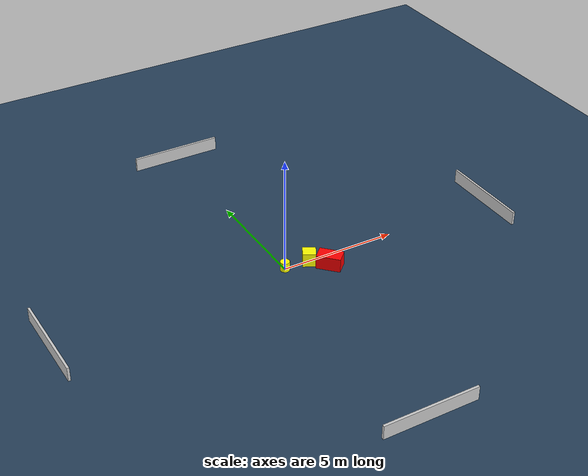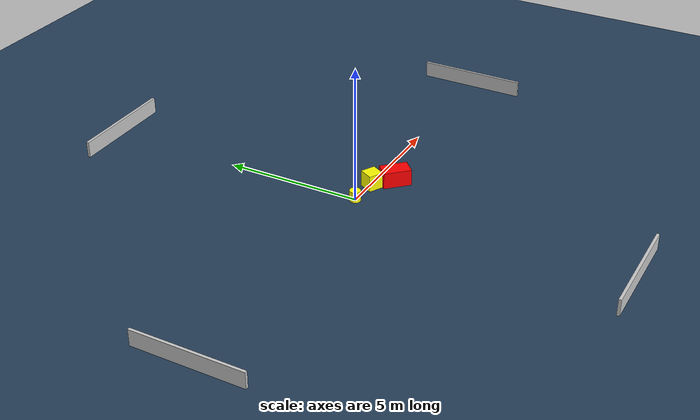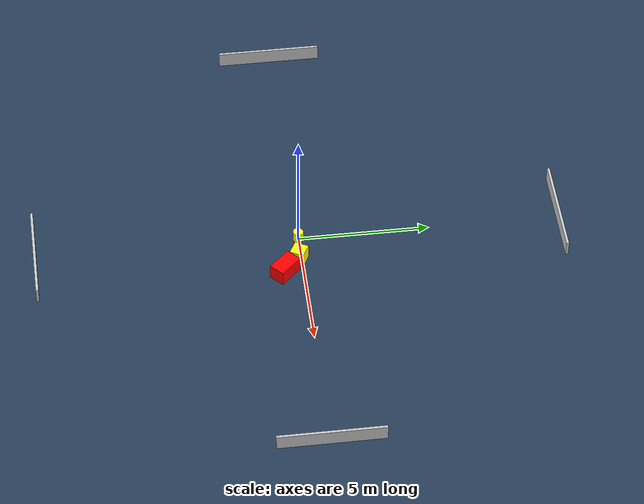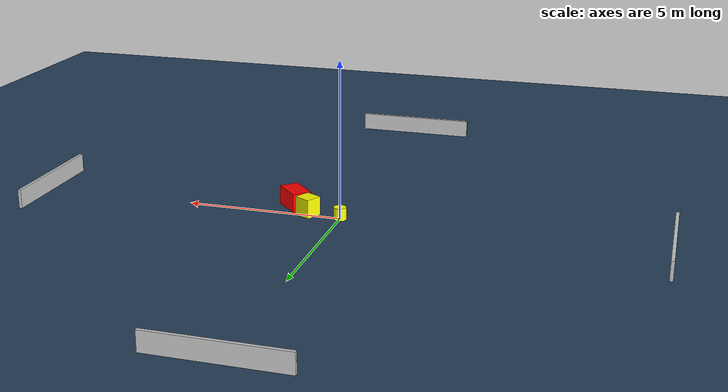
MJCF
<?xml version="1.0" ?>
<mujoco model="generated_environment">
  <option timestep="0.01" integrator="RK4" cone="elliptic"/>
  <default>
    <geom density="1"/>
  </default>
  <asset>
    <texture builtin="gradient" height="3072" name="skybox" rgb1="0.3 0.5 0.7" rgb2="0 0 0" type="skybox" width="512"/>
    <texture builtin="checker" height="300" name="groundplane" rgb1="0.2 0.3 0.4" rgb2="0.1 0.2 0.3" type="2d" width="300"/>
    <material name="groundplane" reflectance="0.2" texrepeat="5 5" texture="groundplane"/>
  </asset>
  <worldbody>
    <light dir="0 0 -1" directional="true" pos="0 0 1.5"/>
    <geom condim="3" friction="0.5 0.005 0.001" material="groundplane" name="floor" pos="0 0 0" size="0 0 0.05" type="plane"/>
    <body name="walls">
      <geom name="wall_1" condim="4" pos="-10.0 0.0 0.3" rgba="0.800000011920929 0.800000011920929 0.800000011920929 1.0" size="0.05 2.0 0.3" type="box"/>
      <geom name="wall_2" condim="4" pos="10.0 0.0 0.3" rgba="0.800000011920929 0.800000011920929 0.800000011920929 1.0" size="0.05 2.0 0.3" type="box"/>
      <geom name="wall_3" condim="4" pos="0.0 -10.0 0.3" rgba="0.800000011920929 0.800000011920929 0.800000011920929 1.0" size="2.0 0.05 0.3" type="box"/>
      <geom name="wall_4" condim="4" pos="0.0 10.0 0.3" rgba="0.800000011920929 0.800000011920929 0.800000011920929 1.0" size="2.0 0.05 0.3" type="box"/>
    </body>
    <body name="robot">
      <joint name="joint_x" type="slide" pos="0 0 0" axis="1 0 0"/>
      <joint name="joint_y" type="slide" pos="0 0 0" axis="0 1 0"/>
      <geom name="robot" type="cylinder" pos="0.0 0.0 0.2" size="0.2 0.2 0.0" mass="5.0" friction="1.0 0.005 0.0001" condim="4" rgba="1.0 1.0 0.0 1.0"/>
    </body>
    <body name="obstacle_1_movable">
      <geom name="obstacle_1_movable" condim="4" pos="1.0749301250452972 -0.09113922653979939 0.3" euler="0 0 151.56121196506928" friction="0.0 0.005 0.001" rgba="1.0 1.0 0.0 1.0" size="0.2747704739747171 0.2671327455630883 0.3" type="box" mass="0.1"/>
      <joint type="free"/>
    </body>
    <body name="obstacle_2_static">
      <geom name="obstacle_2_static" condim="4" pos="1.692571516247689 -0.6928003602176105 0.3" euler="0 0 223.58306497500536" friction="0.0 0.005 0.001" rgba="1.0 0.0 0.0 1.0" size="0.30812025858373426 0.5089800043791677 0.3" type="box"/>
    </body>
  </worldbody>
  <actuator>
    <motor name="actuator_x" joint="joint_x" gear="1" ctrlrange="-1 1"/>
    <motor name="actuator_y" joint="joint_y" gear="1" ctrlrange="-1 1"/>
  </actuator>
</mujoco>
